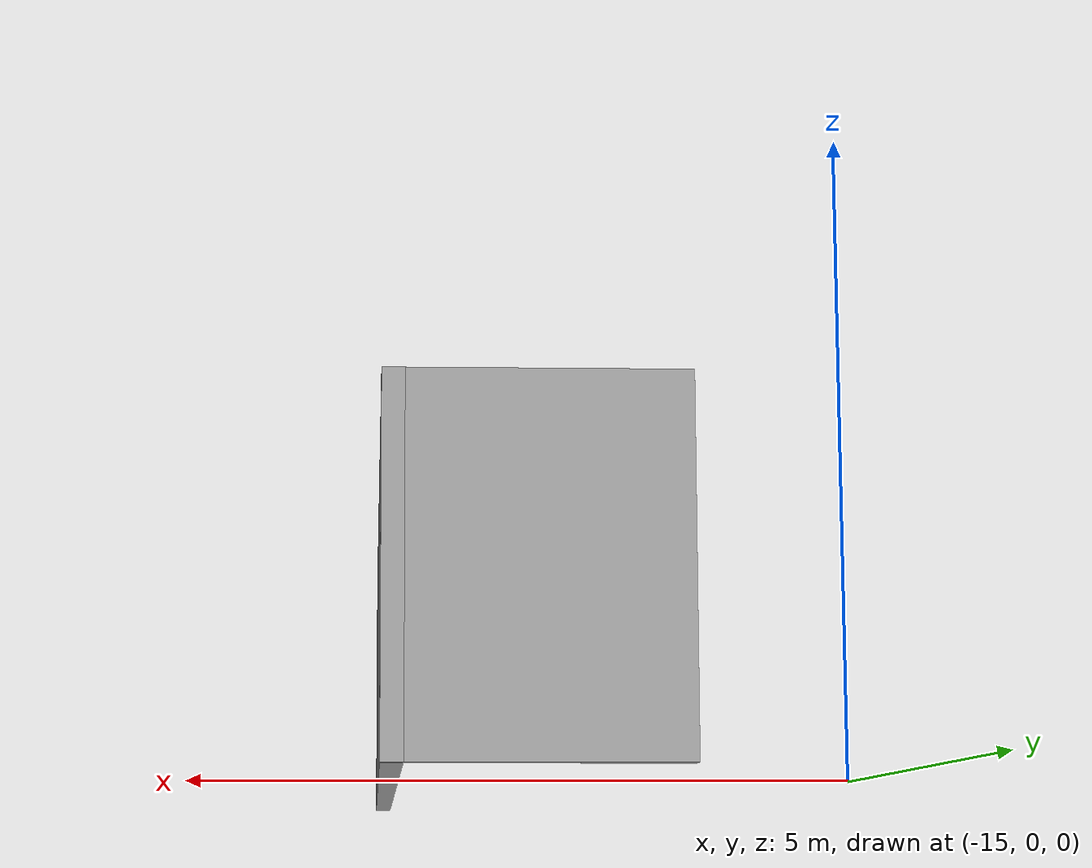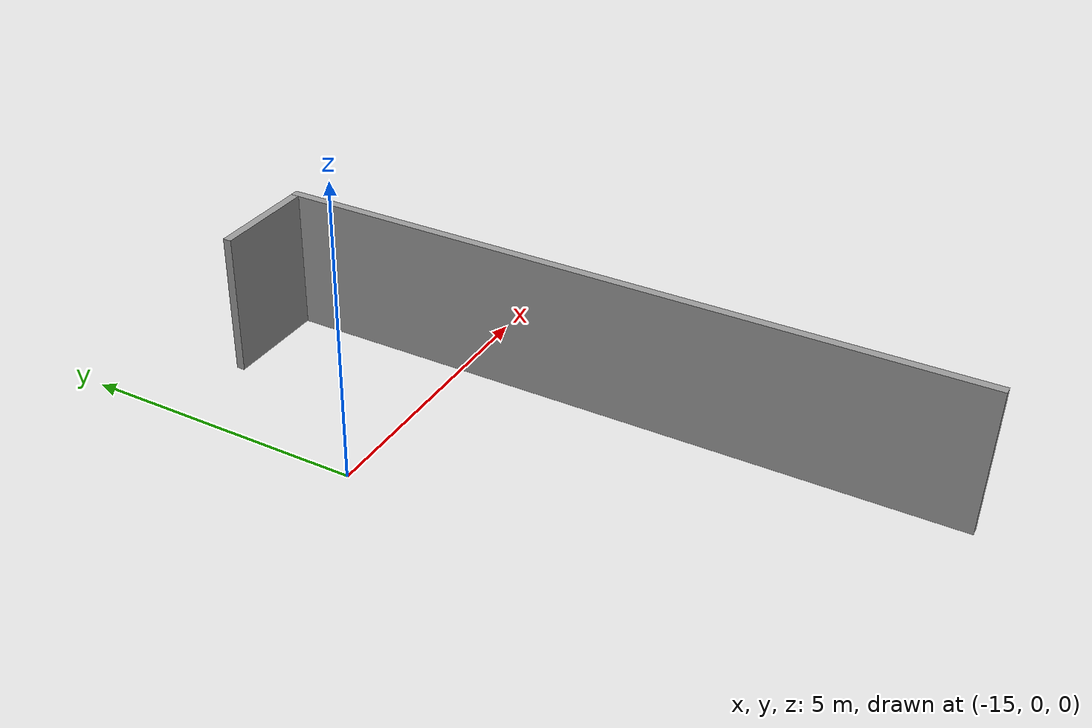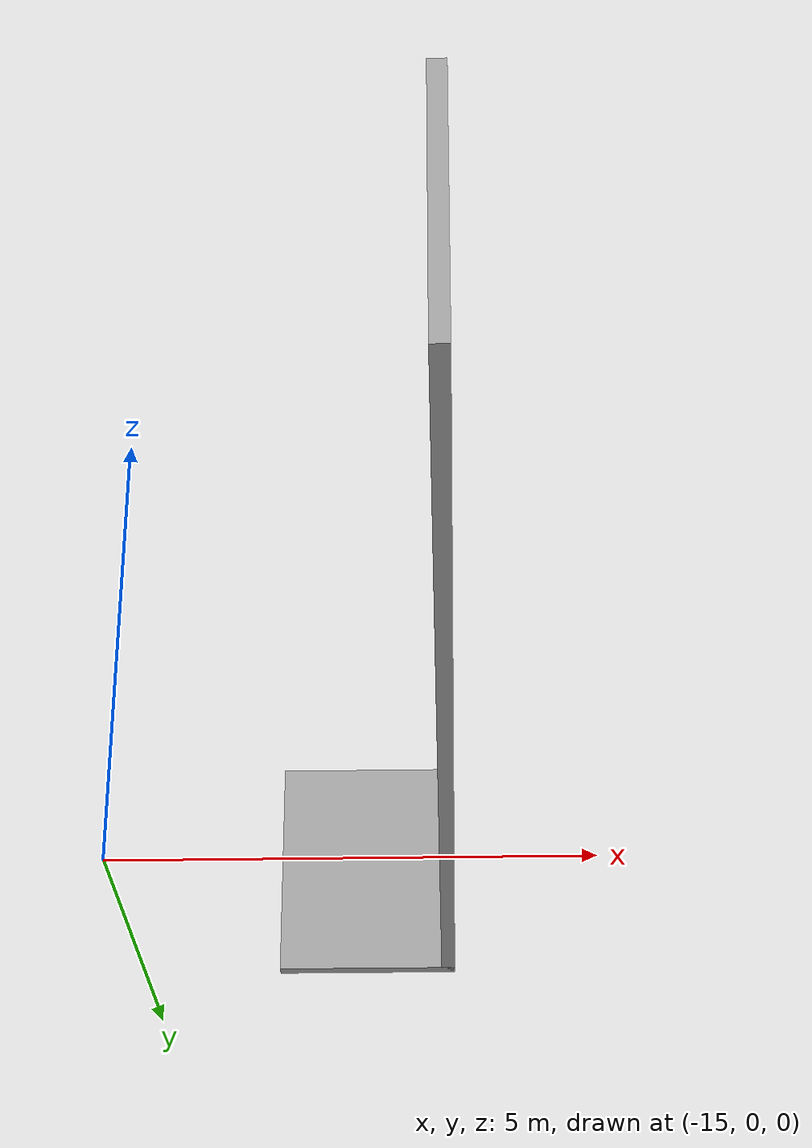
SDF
<?xml version='1.0'?>
<sdf version='1.6'>
  <model name='WALL'>
    <pose frame=''>-12.4433 -2.64254 0 0 -0 0</pose>
    <link name='Wall_45'>
      <collision name='Wall_45_Collision'>
        <geometry>
          <box>
            <size>12.0212 0.15 2.5</size>
          </box>
        </geometry>
        <pose frame=''>0 0 1.25 0 -0 0</pose>
      </collision>
      <visual name='Wall_45_Visual'>
        <pose frame=''>0 0 1.25 0 -0 0</pose>
        <geometry>
          <box>
            <size>12.0212 0.15 2.5</size>
          </box>
        </geometry>
        <material>
          <script>
            <uri>file://media/materials/scripts/gazebo.material</uri>
            <name>Gazebo/Grey</name>
          </script>
          <ambient>1 1 1 1</ambient>
        </material>
      </visual>
      <pose frame=''>0.925 0 0 0 -0 1.5708</pose>
    </link>
    <link name='Wall_48'>
      <collision name='Wall_48_Collision'>
        <geometry>
          <box>
            <size>2 0.15 2.5</size>
          </box>
        </geometry>
        <pose frame=''>0 0 1.25 0 -0 0</pose>
      </collision>
      <visual name='Wall_48_Visual'>
        <pose frame=''>0 0 1.25 0 -0 0</pose>
        <geometry>
          <box>
            <size>2 0.15 2.5</size>
          </box>
        </geometry>
        <material>
          <script>
            <uri>file://media/materials/scripts/gazebo.material</uri>
            <name>Gazebo/Grey</name>
          </script>
          <ambient>1 1 1 1</ambient>
        </material>
      </visual>
      <pose frame=''>0 5.9356 0 0 -0 3.14159</pose>
    </link>
    <static>1</static>
  </model>
</sdf>
